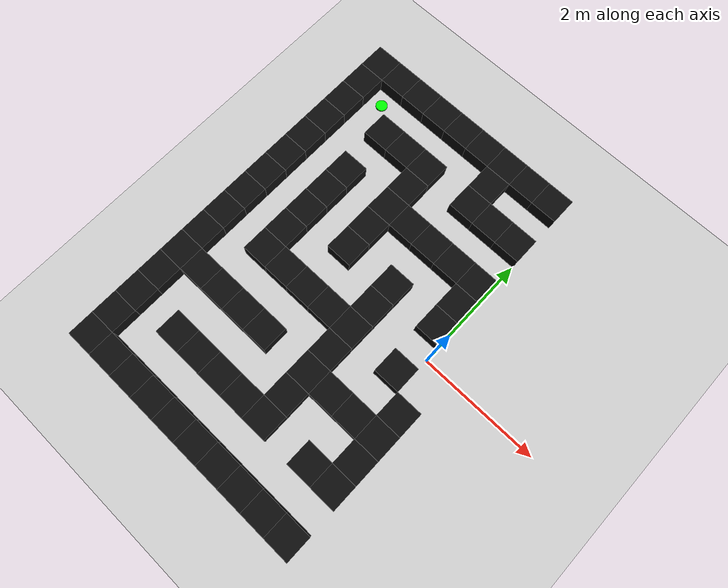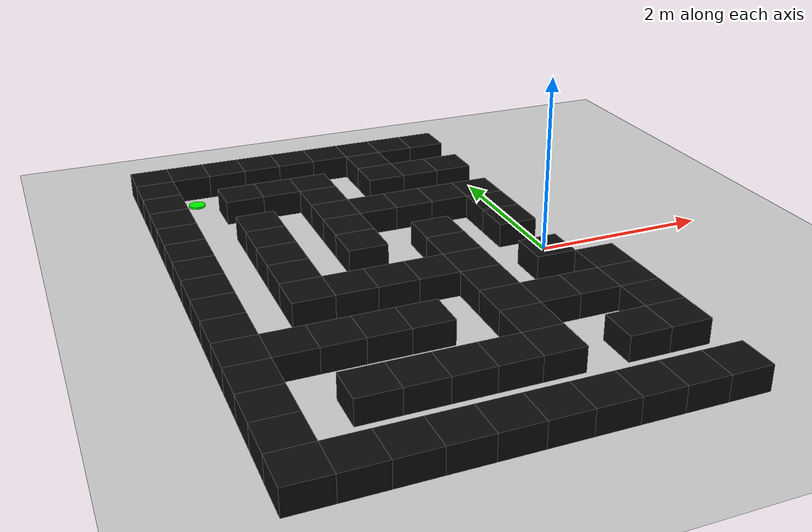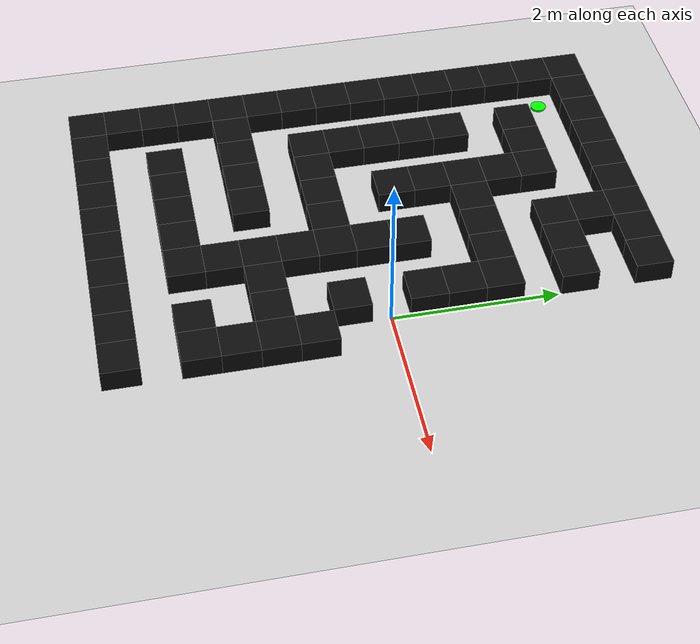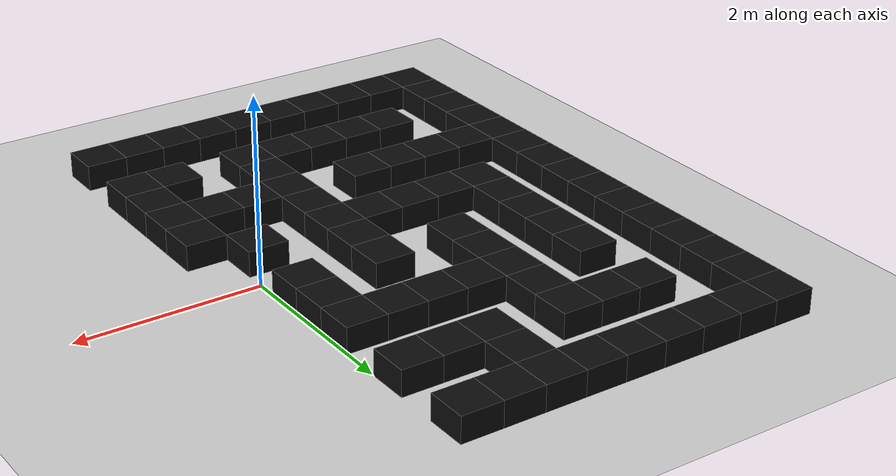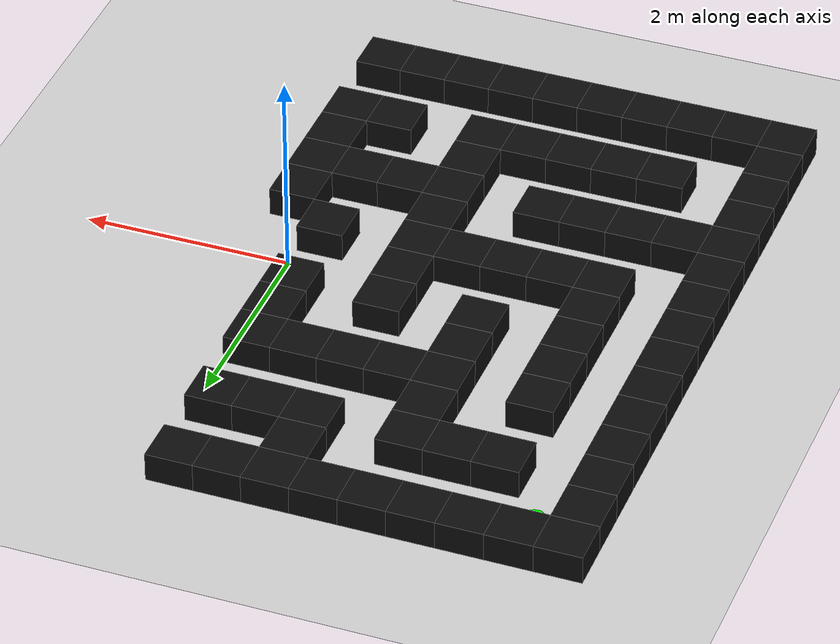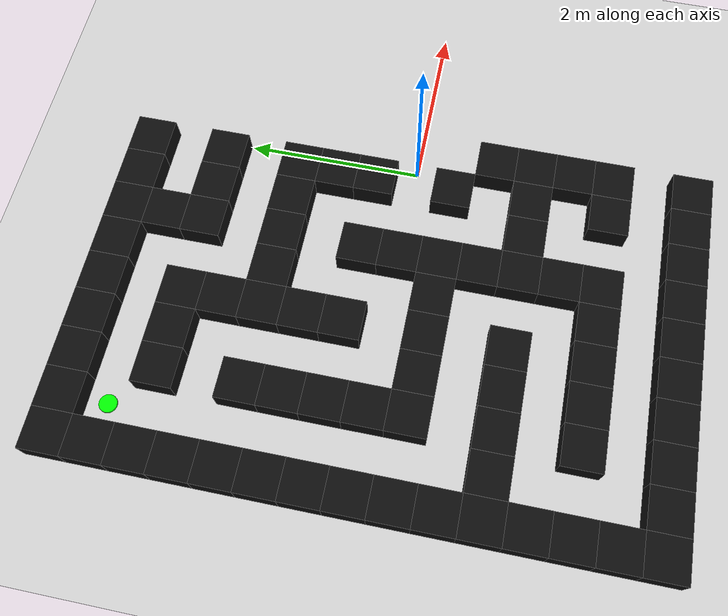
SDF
<sdf version="1.9">
 <world name="tangled_island_maze">
  <model name="ground_plane">
   <static>true</static>
   <link name="link">
    <collision name="collision">
     <geometry><plane><normal>0 0 1</normal><size>30 30</size></plane></geometry>
    </collision>
    <visual name="visual">
     <geometry><plane><normal>0 0 1</normal><size>30 30</size></plane></geometry>
     <material><ambient>0.82 0.82 0.82 1</ambient><diffuse>0.82 0.82 0.82 1</diffuse></material>
    </visual>
   </link>
  </model>
  <model name="wall_0">
   <static>true</static>
   <pose>-3.825 -3.150 0.140 0 0 0</pose>
   <link name="link">
    <collision name="collision"><geometry><box><size>0.450 0.450 0.280</size></box></geometry></collision>
    <visual name="visual">
     <geometry><box><size>0.450 0.450 0.280</size></box></geometry>
     <material><ambient>0.05 0.05 0.05 1</ambient><diffuse>0.05 0.05 0.05 1</diffuse></material>
    </visual>
   </link>
  </model>
  <model name="wall_1">
   <static>true</static>
   <pose>-3.375 -3.150 0.140 0 0 0</pose>
   <link name="link">
    <collision name="collision"><geometry><box><size>0.450 0.450 0.280</size></box></geometry></collision>
    <visual name="visual">
     <geometry><box><size>0.450 0.450 0.280</size></box></geometry>
     <material><ambient>0.05 0.05 0.05 1</ambient><diffuse>0.05 0.05 0.05 1</diffuse></material>
    </visual>
   </link>
  </model>
  <model name="wall_2">
   <static>true</static>
   <pose>-2.925 -3.150 0.140 0 0 0</pose>
   <link name="link">
    <collision name="collision"><geometry><box><size>0.450 0.450 0.280</size></box></geometry></collision>
    <visual name="visual">
     <geometry><box><size>0.450 0.450 0.280</size></box></geometry>
     <material><ambient>0.05 0.05 0.05 1</ambient><diffuse>0.05 0.05 0.05 1</diffuse></material>
    </visual>
   </link>
  </model>
  <model name="wall_3">
   <static>true</static>
   <pose>-2.475 -3.150 0.140 0 0 0</pose>
   <link name="link">
    <collision name="collision"><geometry><box><size>0.450 0.450 0.280</size></box></geometry></collision>
    <visual name="visual">
     <geometry><box><size>0.450 0.450 0.280</size></box></geometry>
     <material><ambient>0.05 0.05 0.05 1</ambient><diffuse>0.05 0.05 0.05 1</diffuse></material>
    </visual>
   </link>
  </model>
  <model name="wall_4">
   <static>true</static>
   <pose>-2.025 -3.150 0.140 0 0 0</pose>
   <link name="link">
    <collision name="collision"><geometry><box><size>0.450 0.450 0.280</size></box></geometry></collision>
    <visual name="visual">
     <geometry><box><size>0.450 0.450 0.280</size></box></geometry>
     <material><ambient>0.05 0.05 0.05 1</ambient><diffuse>0.05 0.05 0.05 1</diffuse></material>
    </visual>
   </link>
  </model>
  <model name="wall_5">
   <static>true</static>
   <pose>-1.575 -3.150 0.140 0 0 0</pose>
   <link name="link">
    <collision name="collision"><geometry><box><size>0.450 0.450 0.280</size></box></geometry></collision>
    <visual name="visual">
     <geometry><box><size>0.450 0.450 0.280</size></box></geometry>
     <material><ambient>0.05 0.05 0.05 1</ambient><diffuse>0.05 0.05 0.05 1</diffuse></material>
    </visual>
   </link>
  </model>
  <model name="wall_6">
   <static>true</static>
   <pose>-1.125 -3.150 0.140 0 0 0</pose>
   <link name="link">
    <collision name="collision"><geometry><box><size>0.450 0.450 0.280</size></box></geometry></collision>
    <visual name="visual">
     <geometry><box><size>0.450 0.450 0.280</size></box></geometry>
     <material><ambient>0.05 0.05 0.05 1</ambient><diffuse>0.05 0.05 0.05 1</diffuse></material>
    </visual>
   </link>
  </model>
  <model name="wall_7">
   <static>true</static>
   <pose>-0.675 -3.150 0.140 0 0 0</pose>
   <link name="link">
    <collision name="collision"><geometry><box><size>0.450 0.450 0.280</size></box></geometry></collision>
    <visual name="visual">
     <geometry><box><size>0.450 0.450 0.280</size></box></geometry>
     <material><ambient>0.05 0.05 0.05 1</ambient><diffuse>0.05 0.05 0.05 1</diffuse></material>
    </visual>
   </link>
  </model>
  <model name="wall_8">
   <static>true</static>
   <pose>-0.225 -3.150 0.140 0 0 0</pose>
   <link name="link">
    <collision name="collision"><geometry><box><size>0.450 0.450 0.280</size></box></geometry></collision>
    <visual name="visual">
     <geometry><box><size>0.450 0.450 0.280</size></box></geometry>
     <material><ambient>0.05 0.05 0.05 1</ambient><diffuse>0.05 0.05 0.05 1</diffuse></material>
    </visual>
   </link>
  </model>
  <model name="wall_9">
   <static>true</static>
   <pose>0.225 -3.150 0.140 0 0 0</pose>
   <link name="link">
    <collision name="collision"><geometry><box><size>0.450 0.450 0.280</size></box></geometry></collision>
    <visual name="visual">
     <geometry><box><size>0.450 0.450 0.280</size></box></geometry>
     <material><ambient>0.05 0.05 0.05 1</ambient><diffuse>0.05 0.05 0.05 1</diffuse></material>
    </visual>
   </link>
  </model>
  <model name="wall_18">
   <static>true</static>
   <pose>-3.825 -2.700 0.140 0 0 0</pose>
   <link name="link">
    <collision name="collision"><geometry><box><size>0.450 0.450 0.280</size></box></geometry></collision>
    <visual name="visual">
     <geometry><box><size>0.450 0.450 0.280</size></box></geometry>
     <material><ambient>0.05 0.05 0.05 1</ambient><diffuse>0.05 0.05 0.05 1</diffuse></material>
    </visual>
   </link>
  </model>
  <model name="wall_21">
   <static>true</static>
   <pose>-3.825 -2.250 0.140 0 0 0</pose>
   <link name="link">
    <collision name="collision"><geometry><box><size>0.450 0.450 0.280</size></box></geometry></collision>
    <visual name="visual">
     <geometry><box><size>0.450 0.450 0.280</size></box></geometry>
     <material><ambient>0.05 0.05 0.05 1</ambient><diffuse>0.05 0.05 0.05 1</diffuse></material>
    </visual>
   </link>
  </model>
  <model name="wall_22">
   <static>true</static>
   <pose>-2.925 -2.250 0.140 0 0 0</pose>
   <link name="link">
    <collision name="collision"><geometry><box><size>0.450 0.450 0.280</size></box></geometry></collision>
    <visual name="visual">
     <geometry><box><size>0.450 0.450 0.280</size></box></geometry>
     <material><ambient>0.05 0.05 0.05 1</ambient><diffuse>0.05 0.05 0.05 1</diffuse></material>
    </visual>
   </link>
  </model>
  <model name="wall_23">
   <static>true</static>
   <pose>-2.475 -2.250 0.140 0 0 0</pose>
   <link name="link">
    <collision name="collision"><geometry><box><size>0.450 0.450 0.280</size></box></geometry></collision>
    <visual name="visual">
     <geometry><box><size>0.450 0.450 0.280</size></box></geometry>
     <material><ambient>0.05 0.05 0.05 1</ambient><diffuse>0.05 0.05 0.05 1</diffuse></material>
    </visual>
   </link>
  </model>
  <model name="wall_24">
   <static>true</static>
   <pose>-2.025 -2.250 0.140 0 0 0</pose>
   <link name="link">
    <collision name="collision"><geometry><box><size>0.450 0.450 0.280</size></box></geometry></collision>
    <visual name="visual">
     <geometry><box><size>0.450 0.450 0.280</size></box></geometry>
     <material><ambient>0.05 0.05 0.05 1</ambient><diffuse>0.05 0.05 0.05 1</diffuse></material>
    </visual>
   </link>
  </model>
  <model name="wall_25">
   <static>true</static>
   <pose>-1.575 -2.250 0.140 0 0 0</pose>
   <link name="link">
    <collision name="collision"><geometry><box><size>0.450 0.450 0.280</size></box></geometry></collision>
    <visual name="visual">
     <geometry><box><size>0.450 0.450 0.280</size></box></geometry>
     <material><ambient>0.05 0.05 0.05 1</ambient><diffuse>0.05 0.05 0.05 1</diffuse></material>
    </visual>
   </link>
  </model>
  <model name="wall_26">
   <static>true</static>
   <pose>-1.125 -2.250 0.140 0 0 0</pose>
   <link name="link">
    <collision name="collision"><geometry><box><size>0.450 0.450 0.280</size></box></geometry></collision>
    <visual name="visual">
     <geometry><box><size>0.450 0.450 0.280</size></box></geometry>
     <material><ambient>0.05 0.05 0.05 1</ambient><diffuse>0.05 0.05 0.05 1</diffuse></material>
    </visual>
   </link>
  </model>
  <model name="wall_27">
   <static>true</static>
   <pose>-0.225 -2.250 0.140 0 0 0</pose>
   <link name="link">
    <collision name="collision"><geometry><box><size>0.450 0.450 0.280</size></box></geometry></collision>
    <visual name="visual">
     <geometry><box><size>0.450 0.450 0.280</size></box></geometry>
     <material><ambient>0.05 0.05 0.05 1</ambient><diffuse>0.05 0.05 0.05 1</diffuse></material>
    </visual>
   </link>
  </model>
  <model name="wall_28">
   <static>true</static>
   <pose>0.225 -2.250 0.140 0 0 0</pose>
   <link name="link">
    <collision name="collision"><geometry><box><size>0.450 0.450 0.280</size></box></geometry></collision>
    <visual name="visual">
     <geometry><box><size>0.450 0.450 0.280</size></box></geometry>
     <material><ambient>0.05 0.05 0.05 1</ambient><diffuse>0.05 0.05 0.05 1</diffuse></material>
    </visual>
   </link>
  </model>
  <model name="wall_37">
   <static>true</static>
   <pose>-3.825 -1.800 0.140 0 0 0</pose>
   <link name="link">
    <collision name="collision"><geometry><box><size>0.450 0.450 0.280</size></box></geometry></collision>
    <visual name="visual">
     <geometry><box><size>0.450 0.450 0.280</size></box></geometry>
     <material><ambient>0.05 0.05 0.05 1</ambient><diffuse>0.05 0.05 0.05 1</diffuse></material>
    </visual>
   </link>
  </model>
  <model name="wall_38">
   <static>true</static>
   <pose>-1.125 -1.800 0.140 0 0 0</pose>
   <link name="link">
    <collision name="collision"><geometry><box><size>0.450 0.450 0.280</size></box></geometry></collision>
    <visual name="visual">
     <geometry><box><size>0.450 0.450 0.280</size></box></geometry>
     <material><ambient>0.05 0.05 0.05 1</ambient><diffuse>0.05 0.05 0.05 1</diffuse></material>
    </visual>
   </link>
  </model>
  <model name="wall_39">
   <static>true</static>
   <pose>0.225 -1.800 0.140 0 0 0</pose>
   <link name="link">
    <collision name="collision"><geometry><box><size>0.450 0.450 0.280</size></box></geometry></collision>
    <visual name="visual">
     <geometry><box><size>0.450 0.450 0.280</size></box></geometry>
     <material><ambient>0.05 0.05 0.05 1</ambient><diffuse>0.05 0.05 0.05 1</diffuse></material>
    </visual>
   </link>
  </model>
  <model name="wall_43">
   <static>true</static>
   <pose>-3.825 -1.350 0.140 0 0 0</pose>
   <link name="link">
    <collision name="collision"><geometry><box><size>0.450 0.450 0.280</size></box></geometry></collision>
    <visual name="visual">
     <geometry><box><size>0.450 0.450 0.280</size></box></geometry>
     <material><ambient>0.05 0.05 0.05 1</ambient><diffuse>0.05 0.05 0.05 1</diffuse></material>
    </visual>
   </link>
  </model>
  <model name="wall_44">
   <static>true</static>
   <pose>-3.375 -1.350 0.140 0 0 0</pose>
   <link name="link">
    <collision name="collision"><geometry><box><size>0.450 0.450 0.280</size></box></geometry></collision>
    <visual name="visual">
     <geometry><box><size>0.450 0.450 0.280</size></box></geometry>
     <material><ambient>0.05 0.05 0.05 1</ambient><diffuse>0.05 0.05 0.05 1</diffuse></material>
    </visual>
   </link>
  </model>
  <model name="wall_45">
   <static>true</static>
   <pose>-2.925 -1.350 0.140 0 0 0</pose>
   <link name="link">
    <collision name="collision"><geometry><box><size>0.450 0.450 0.280</size></box></geometry></collision>
    <visual name="visual">
     <geometry><box><size>0.450 0.450 0.280</size></box></geometry>
     <material><ambient>0.05 0.05 0.05 1</ambient><diffuse>0.05 0.05 0.05 1</diffuse></material>
    </visual>
   </link>
  </model>
  <model name="wall_46">
   <static>true</static>
   <pose>-2.475 -1.350 0.140 0 0 0</pose>
   <link name="link">
    <collision name="collision"><geometry><box><size>0.450 0.450 0.280</size></box></geometry></collision>
    <visual name="visual">
     <geometry><box><size>0.450 0.450 0.280</size></box></geometry>
     <material><ambient>0.05 0.05 0.05 1</ambient><diffuse>0.05 0.05 0.05 1</diffuse></material>
    </visual>
   </link>
  </model>
  <model name="wall_47">
   <static>true</static>
   <pose>-2.025 -1.350 0.140 0 0 0</pose>
   <link name="link">
    <collision name="collision"><geometry><box><size>0.450 0.450 0.280</size></box></geometry></collision>
    <visual name="visual">
     <geometry><box><size>0.450 0.450 0.280</size></box></geometry>
     <material><ambient>0.05 0.05 0.05 1</ambient><diffuse>0.05 0.05 0.05 1</diffuse></material>
    </visual>
   </link>
  </model>
  <model name="wall_48">
   <static>true</static>
   <pose>-1.125 -1.350 0.140 0 0 0</pose>
   <link name="link">
    <collision name="collision"><geometry><box><size>0.450 0.450 0.280</size></box></geometry></collision>
    <visual name="visual">
     <geometry><box><size>0.450 0.450 0.280</size></box></geometry>
     <material><ambient>0.05 0.05 0.05 1</ambient><diffuse>0.05 0.05 0.05 1</diffuse></material>
    </visual>
   </link>
  </model>
  <model name="wall_49">
   <static>true</static>
   <pose>-0.675 -1.350 0.140 0 0 0</pose>
   <link name="link">
    <collision name="collision"><geometry><box><size>0.450 0.450 0.280</size></box></geometry></collision>
    <visual name="visual">
     <geometry><box><size>0.450 0.450 0.280</size></box></geometry>
     <material><ambient>0.05 0.05 0.05 1</ambient><diffuse>0.05 0.05 0.05 1</diffuse></material>
    </visual>
   </link>
  </model>
  <model name="wall_50">
   <static>true</static>
   <pose>-0.225 -1.350 0.140 0 0 0</pose>
   <link name="link">
    <collision name="collision"><geometry><box><size>0.450 0.450 0.280</size></box></geometry></collision>
    <visual name="visual">
     <geometry><box><size>0.450 0.450 0.280</size></box></geometry>
     <material><ambient>0.05 0.05 0.05 1</ambient><diffuse>0.05 0.05 0.05 1</diffuse></material>
    </visual>
   </link>
  </model>
  <model name="wall_51">
   <static>true</static>
   <pose>0.225 -1.350 0.140 0 0 0</pose>
   <link name="link">
    <collision name="collision"><geometry><box><size>0.450 0.450 0.280</size></box></geometry></collision>
    <visual name="visual">
     <geometry><box><size>0.450 0.450 0.280</size></box></geometry>
     <material><ambient>0.05 0.05 0.05 1</ambient><diffuse>0.05 0.05 0.05 1</diffuse></material>
    </visual>
   </link>
  </model>
  <model name="wall_57">
   <static>true</static>
   <pose>-3.825 -0.900 0.140 0 0 0</pose>
   <link name="link">
    <collision name="collision"><geometry><box><size>0.450 0.450 0.280</size></box></geometry></collision>
    <visual name="visual">
     <geometry><box><size>0.450 0.450 0.280</size></box></geometry>
     <material><ambient>0.05 0.05 0.05 1</ambient><diffuse>0.05 0.05 0.05 1</diffuse></material>
    </visual>
   </link>
  </model>
  <model name="wall_58">
   <static>true</static>
   <pose>-1.125 -0.900 0.140 0 0 0</pose>
   <link name="link">
    <collision name="collision"><geometry><box><size>0.450 0.450 0.280</size></box></geometry></collision>
    <visual name="visual">
     <geometry><box><size>0.450 0.450 0.280</size></box></geometry>
     <material><ambient>0.05 0.05 0.05 1</ambient><diffuse>0.05 0.05 0.05 1</diffuse></material>
    </visual>
   </link>
  </model>
  <model name="wall_59">
   <static>true</static>
   <pose>0.225 -0.900 0.140 0 0 0</pose>
   <link name="link">
    <collision name="collision"><geometry><box><size>0.450 0.450 0.280</size></box></geometry></collision>
    <visual name="visual">
     <geometry><box><size>0.450 0.450 0.280</size></box></geometry>
     <material><ambient>0.05 0.05 0.05 1</ambient><diffuse>0.05 0.05 0.05 1</diffuse></material>
    </visual>
   </link>
  </model>
  <model name="wall_65">
   <static>true</static>
   <pose>-3.825 -0.450 0.140 0 0 0</pose>
   <link name="link">
    <collision name="collision"><geometry><box><size>0.450 0.450 0.280</size></box></geometry></collision>
    <visual name="visual">
     <geometry><box><size>0.450 0.450 0.280</size></box></geometry>
     <material><ambient>0.05 0.05 0.05 1</ambient><diffuse>0.05 0.05 0.05 1</diffuse></material>
    </visual>
   </link>
  </model>
  <model name="wall_66">
   <static>true</static>
   <pose>-2.925 -0.450 0.140 0 0 0</pose>
   <link name="link">
    <collision name="collision"><geometry><box><size>0.450 0.450 0.280</size></box></geometry></collision>
    <visual name="visual">
     <geometry><box><size>0.450 0.450 0.280</size></box></geometry>
     <material><ambient>0.05 0.05 0.05 1</ambient><diffuse>0.05 0.05 0.05 1</diffuse></material>
    </visual>
   </link>
  </model>
  <model name="wall_67">
   <static>true</static>
   <pose>-2.475 -0.450 0.140 0 0 0</pose>
   <link name="link">
    <collision name="collision"><geometry><box><size>0.450 0.450 0.280</size></box></geometry></collision>
    <visual name="visual">
     <geometry><box><size>0.450 0.450 0.280</size></box></geometry>
     <material><ambient>0.05 0.05 0.05 1</ambient><diffuse>0.05 0.05 0.05 1</diffuse></material>
    </visual>
   </link>
  </model>
  <model name="wall_68">
   <static>true</static>
   <pose>-2.025 -0.450 0.140 0 0 0</pose>
   <link name="link">
    <collision name="collision"><geometry><box><size>0.450 0.450 0.280</size></box></geometry></collision>
    <visual name="visual">
     <geometry><box><size>0.450 0.450 0.280</size></box></geometry>
     <material><ambient>0.05 0.05 0.05 1</ambient><diffuse>0.05 0.05 0.05 1</diffuse></material>
    </visual>
   </link>
  </model>
  <model name="wall_69">
   <static>true</static>
   <pose>-1.575 -0.450 0.140 0 0 0</pose>
   <link name="link">
    <collision name="collision"><geometry><box><size>0.450 0.450 0.280</size></box></geometry></collision>
    <visual name="visual">
     <geometry><box><size>0.450 0.450 0.280</size></box></geometry>
     <material><ambient>0.05 0.05 0.05 1</ambient><diffuse>0.05 0.05 0.05 1</diffuse></material>
    </visual>
   </link>
  </model>
  <model name="wall_70">
   <static>true</static>
   <pose>-1.125 -0.450 0.140 0 0 0</pose>
   <link name="link">
    <collision name="collision"><geometry><box><size>0.450 0.450 0.280</size></box></geometry></collision>
    <visual name="visual">
     <geometry><box><size>0.450 0.450 0.280</size></box></geometry>
     <material><ambient>0.05 0.05 0.05 1</ambient><diffuse>0.05 0.05 0.05 1</diffuse></material>
    </visual>
   </link>
  </model>
  <model name="wall_71">
   <static>true</static>
   <pose>-0.225 -0.450 0.140 0 0 0</pose>
   <link name="link">
    <collision name="collision"><geometry><box><size>0.450 0.450 0.280</size></box></geometry></collision>
    <visual name="visual">
     <geometry><box><size>0.450 0.450 0.280</size></box></geometry>
     <material><ambient>0.05 0.05 0.05 1</ambient><diffuse>0.05 0.05 0.05 1</diffuse></material>
    </visual>
   </link>
  </model>
  <model name="wall_79">
   <static>true</static>
   <pose>-3.825 0.000 0.140 0 0 0</pose>
   <link name="link">
    <collision name="collision"><geometry><box><size>0.450 0.450 0.280</size></box></geometry></collision>
    <visual name="visual">
     <geometry><box><size>0.450 0.450 0.280</size></box></geometry>
     <material><ambient>0.05 0.05 0.05 1</ambient><diffuse>0.05 0.05 0.05 1</diffuse></material>
    </visual>
   </link>
  </model>
  <model name="wall_80">
   <static>true</static>
   <pose>-2.925 0.000 0.140 0 0 0</pose>
   <link name="link">
    <collision name="collision"><geometry><box><size>0.450 0.450 0.280</size></box></geometry></collision>
    <visual name="visual">
     <geometry><box><size>0.450 0.450 0.280</size></box></geometry>
     <material><ambient>0.05 0.05 0.05 1</ambient><diffuse>0.05 0.05 0.05 1</diffuse></material>
    </visual>
   </link>
  </model>
  <model name="wall_81">
   <static>true</static>
   <pose>-1.125 0.000 0.140 0 0 0</pose>
   <link name="link">
    <collision name="collision"><geometry><box><size>0.450 0.450 0.280</size></box></geometry></collision>
    <visual name="visual">
     <geometry><box><size>0.450 0.450 0.280</size></box></geometry>
     <material><ambient>0.05 0.05 0.05 1</ambient><diffuse>0.05 0.05 0.05 1</diffuse></material>
    </visual>
   </link>
  </model>
  <model name="wall_86">
   <static>true</static>
   <pose>-3.825 0.450 0.140 0 0 0</pose>
   <link name="link">
    <collision name="collision"><geometry><box><size>0.450 0.450 0.280</size></box></geometry></collision>
    <visual name="visual">
     <geometry><box><size>0.450 0.450 0.280</size></box></geometry>
     <material><ambient>0.05 0.05 0.05 1</ambient><diffuse>0.05 0.05 0.05 1</diffuse></material>
    </visual>
   </link>
  </model>
  <model name="wall_87">
   <static>true</static>
   <pose>-2.925 0.450 0.140 0 0 0</pose>
   <link name="link">
    <collision name="collision"><geometry><box><size>0.450 0.450 0.280</size></box></geometry></collision>
    <visual name="visual">
     <geometry><box><size>0.450 0.450 0.280</size></box></geometry>
     <material><ambient>0.05 0.05 0.05 1</ambient><diffuse>0.05 0.05 0.05 1</diffuse></material>
    </visual>
   </link>
  </model>
  <model name="wall_88">
   <static>true</static>
   <pose>-2.025 0.450 0.140 0 0 0</pose>
   <link name="link">
    <collision name="collision"><geometry><box><size>0.450 0.450 0.280</size></box></geometry></collision>
    <visual name="visual">
     <geometry><box><size>0.450 0.450 0.280</size></box></geometry>
     <material><ambient>0.05 0.05 0.05 1</ambient><diffuse>0.05 0.05 0.05 1</diffuse></material>
    </visual>
   </link>
  </model>
  <model name="wall_89">
   <static>true</static>
   <pose>-1.125 0.450 0.140 0 0 0</pose>
   <link name="link">
    <collision name="collision"><geometry><box><size>0.450 0.450 0.280</size></box></geometry></collision>
    <visual name="visual">
     <geometry><box><size>0.450 0.450 0.280</size></box></geometry>
     <material><ambient>0.05 0.05 0.05 1</ambient><diffuse>0.05 0.05 0.05 1</diffuse></material>
    </visual>
   </link>
  </model>
  <model name="wall_90">
   <static>true</static>
   <pose>-0.225 0.450 0.140 0 0 0</pose>
   <link name="link">
    <collision name="collision"><geometry><box><size>0.450 0.450 0.280</size></box></geometry></collision>
    <visual name="visual">
     <geometry><box><size>0.450 0.450 0.280</size></box></geometry>
     <material><ambient>0.05 0.05 0.05 1</ambient><diffuse>0.05 0.05 0.05 1</diffuse></material>
    </visual>
   </link>
  </model>
  <model name="wall_99">
   <static>true</static>
   <pose>-3.825 0.900 0.140 0 0 0</pose>
   <link name="link">
    <collision name="collision"><geometry><box><size>0.450 0.450 0.280</size></box></geometry></collision>
    <visual name="visual">
     <geometry><box><size>0.450 0.450 0.280</size></box></geometry>
     <material><ambient>0.05 0.05 0.05 1</ambient><diffuse>0.05 0.05 0.05 1</diffuse></material>
    </visual>
   </link>
  </model>
  <model name="wall_100">
   <static>true</static>
   <pose>-2.925 0.900 0.140 0 0 0</pose>
   <link name="link">
    <collision name="collision"><geometry><box><size>0.450 0.450 0.280</size></box></geometry></collision>
    <visual name="visual">
     <geometry><box><size>0.450 0.450 0.280</size></box></geometry>
     <material><ambient>0.05 0.05 0.05 1</ambient><diffuse>0.05 0.05 0.05 1</diffuse></material>
    </visual>
   </link>
  </model>
  <model name="wall_101">
   <static>true</static>
   <pose>-2.025 0.900 0.140 0 0 0</pose>
   <link name="link">
    <collision name="collision"><geometry><box><size>0.450 0.450 0.280</size></box></geometry></collision>
    <visual name="visual">
     <geometry><box><size>0.450 0.450 0.280</size></box></geometry>
     <material><ambient>0.05 0.05 0.05 1</ambient><diffuse>0.05 0.05 0.05 1</diffuse></material>
    </visual>
   </link>
  </model>
  <model name="wall_102">
   <static>true</static>
   <pose>-0.225 0.900 0.140 0 0 0</pose>
   <link name="link">
    <collision name="collision"><geometry><box><size>0.450 0.450 0.280</size></box></geometry></collision>
    <visual name="visual">
     <geometry><box><size>0.450 0.450 0.280</size></box></geometry>
     <material><ambient>0.05 0.05 0.05 1</ambient><diffuse>0.05 0.05 0.05 1</diffuse></material>
    </visual>
   </link>
  </model>
  <model name="wall_106">
   <static>true</static>
   <pose>-3.825 1.350 0.140 0 0 0</pose>
   <link name="link">
    <collision name="collision"><geometry><box><size>0.450 0.450 0.280</size></box></geometry></collision>
    <visual name="visual">
     <geometry><box><size>0.450 0.450 0.280</size></box></geometry>
     <material><ambient>0.05 0.05 0.05 1</ambient><diffuse>0.05 0.05 0.05 1</diffuse></material>
    </visual>
   </link>
  </model>
  <model name="wall_107">
   <static>true</static>
   <pose>-2.925 1.350 0.140 0 0 0</pose>
   <link name="link">
    <collision name="collision"><geometry><box><size>0.450 0.450 0.280</size></box></geometry></collision>
    <visual name="visual">
     <geometry><box><size>0.450 0.450 0.280</size></box></geometry>
     <material><ambient>0.05 0.05 0.05 1</ambient><diffuse>0.05 0.05 0.05 1</diffuse></material>
    </visual>
   </link>
  </model>
  <model name="wall_108">
   <static>true</static>
   <pose>-2.025 1.350 0.140 0 0 0</pose>
   <link name="link">
    <collision name="collision"><geometry><box><size>0.450 0.450 0.280</size></box></geometry></collision>
    <visual name="visual">
     <geometry><box><size>0.450 0.450 0.280</size></box></geometry>
     <material><ambient>0.05 0.05 0.05 1</ambient><diffuse>0.05 0.05 0.05 1</diffuse></material>
    </visual>
   </link>
  </model>
  <model name="wall_109">
   <static>true</static>
   <pose>-1.575 1.350 0.140 0 0 0</pose>
   <link name="link">
    <collision name="collision"><geometry><box><size>0.450 0.450 0.280</size></box></geometry></collision>
    <visual name="visual">
     <geometry><box><size>0.450 0.450 0.280</size></box></geometry>
     <material><ambient>0.05 0.05 0.05 1</ambient><diffuse>0.05 0.05 0.05 1</diffuse></material>
    </visual>
   </link>
  </model>
  <model name="wall_110">
   <static>true</static>
   <pose>-1.125 1.350 0.140 0 0 0</pose>
   <link name="link">
    <collision name="collision"><geometry><box><size>0.450 0.450 0.280</size></box></geometry></collision>
    <visual name="visual">
     <geometry><box><size>0.450 0.450 0.280</size></box></geometry>
     <material><ambient>0.05 0.05 0.05 1</ambient><diffuse>0.05 0.05 0.05 1</diffuse></material>
    </visual>
   </link>
  </model>
  <model name="wall_111">
   <static>true</static>
   <pose>-0.675 1.350 0.140 0 0 0</pose>
   <link name="link">
    <collision name="collision"><geometry><box><size>0.450 0.450 0.280</size></box></geometry></collision>
    <visual name="visual">
     <geometry><box><size>0.450 0.450 0.280</size></box></geometry>
     <material><ambient>0.05 0.05 0.05 1</ambient><diffuse>0.05 0.05 0.05 1</diffuse></material>
    </visual>
   </link>
  </model>
  <model name="wall_112">
   <static>true</static>
   <pose>-0.225 1.350 0.140 0 0 0</pose>
   <link name="link">
    <collision name="collision"><geometry><box><size>0.450 0.450 0.280</size></box></geometry></collision>
    <visual name="visual">
     <geometry><box><size>0.450 0.450 0.280</size></box></geometry>
     <material><ambient>0.05 0.05 0.05 1</ambient><diffuse>0.05 0.05 0.05 1</diffuse></material>
    </visual>
   </link>
  </model>
  <model name="wall_119">
   <static>true</static>
   <pose>-3.825 1.800 0.140 0 0 0</pose>
   <link name="link">
    <collision name="collision"><geometry><box><size>0.450 0.450 0.280</size></box></geometry></collision>
    <visual name="visual">
     <geometry><box><size>0.450 0.450 0.280</size></box></geometry>
     <material><ambient>0.05 0.05 0.05 1</ambient><diffuse>0.05 0.05 0.05 1</diffuse></material>
    </visual>
   </link>
  </model>
  <model name="wall_120">
   <static>true</static>
   <pose>-2.025 1.800 0.140 0 0 0</pose>
   <link name="link">
    <collision name="collision"><geometry><box><size>0.450 0.450 0.280</size></box></geometry></collision>
    <visual name="visual">
     <geometry><box><size>0.450 0.450 0.280</size></box></geometry>
     <material><ambient>0.05 0.05 0.05 1</ambient><diffuse>0.05 0.05 0.05 1</diffuse></material>
    </visual>
   </link>
  </model>
  <model name="wall_125">
   <static>true</static>
   <pose>-3.825 2.250 0.140 0 0 0</pose>
   <link name="link">
    <collision name="collision"><geometry><box><size>0.450 0.450 0.280</size></box></geometry></collision>
    <visual name="visual">
     <geometry><box><size>0.450 0.450 0.280</size></box></geometry>
     <material><ambient>0.05 0.05 0.05 1</ambient><diffuse>0.05 0.05 0.05 1</diffuse></material>
    </visual>
   </link>
  </model>
  <model name="wall_126">
   <static>true</static>
   <pose>-2.925 2.250 0.140 0 0 0</pose>
   <link name="link">
    <collision name="collision"><geometry><box><size>0.450 0.450 0.280</size></box></geometry></collision>
    <visual name="visual">
     <geometry><box><size>0.450 0.450 0.280</size></box></geometry>
     <material><ambient>0.05 0.05 0.05 1</ambient><diffuse>0.05 0.05 0.05 1</diffuse></material>
    </visual>
   </link>
  </model>
  <model name="wall_127">
   <static>true</static>
   <pose>-2.475 2.250 0.140 0 0 0</pose>
   <link name="link">
    <collision name="collision"><geometry><box><size>0.450 0.450 0.280</size></box></geometry></collision>
    <visual name="visual">
     <geometry><box><size>0.450 0.450 0.280</size></box></geometry>
     <material><ambient>0.05 0.05 0.05 1</ambient><diffuse>0.05 0.05 0.05 1</diffuse></material>
    </visual>
   </link>
  </model>
  <model name="wall_128">
   <static>true</static>
   <pose>-2.025 2.250 0.140 0 0 0</pose>
   <link name="link">
    <collision name="collision"><geometry><box><size>0.450 0.450 0.280</size></box></geometry></collision>
    <visual name="visual">
     <geometry><box><size>0.450 0.450 0.280</size></box></geometry>
     <material><ambient>0.05 0.05 0.05 1</ambient><diffuse>0.05 0.05 0.05 1</diffuse></material>
    </visual>
   </link>
  </model>
  <model name="wall_129">
   <static>true</static>
   <pose>-1.125 2.250 0.140 0 0 0</pose>
   <link name="link">
    <collision name="collision"><geometry><box><size>0.450 0.450 0.280</size></box></geometry></collision>
    <visual name="visual">
     <geometry><box><size>0.450 0.450 0.280</size></box></geometry>
     <material><ambient>0.05 0.05 0.05 1</ambient><diffuse>0.05 0.05 0.05 1</diffuse></material>
    </visual>
   </link>
  </model>
  <model name="wall_130">
   <static>true</static>
   <pose>-0.675 2.250 0.140 0 0 0</pose>
   <link name="link">
    <collision name="collision"><geometry><box><size>0.450 0.450 0.280</size></box></geometry></collision>
    <visual name="visual">
     <geometry><box><size>0.450 0.450 0.280</size></box></geometry>
     <material><ambient>0.05 0.05 0.05 1</ambient><diffuse>0.05 0.05 0.05 1</diffuse></material>
    </visual>
   </link>
  </model>
  <model name="wall_131">
   <static>true</static>
   <pose>-0.225 2.250 0.140 0 0 0</pose>
   <link name="link">
    <collision name="collision"><geometry><box><size>0.450 0.450 0.280</size></box></geometry></collision>
    <visual name="visual">
     <geometry><box><size>0.450 0.450 0.280</size></box></geometry>
     <material><ambient>0.05 0.05 0.05 1</ambient><diffuse>0.05 0.05 0.05 1</diffuse></material>
    </visual>
   </link>
  </model>
  <model name="wall_138">
   <static>true</static>
   <pose>-3.825 2.700 0.140 0 0 0</pose>
   <link name="link">
    <collision name="collision"><geometry><box><size>0.450 0.450 0.280</size></box></geometry></collision>
    <visual name="visual">
     <geometry><box><size>0.450 0.450 0.280</size></box></geometry>
     <material><ambient>0.05 0.05 0.05 1</ambient><diffuse>0.05 0.05 0.05 1</diffuse></material>
    </visual>
   </link>
  </model>
  <model name="wall_139">
   <static>true</static>
   <pose>-1.125 2.700 0.140 0 0 0</pose>
   <link name="link">
    <collision name="collision"><geometry><box><size>0.450 0.450 0.280</size></box></geometry></collision>
    <visual name="visual">
     <geometry><box><size>0.450 0.450 0.280</size></box></geometry>
     <material><ambient>0.05 0.05 0.05 1</ambient><diffuse>0.05 0.05 0.05 1</diffuse></material>
    </visual>
   </link>
  </model>
  <model name="wall_143">
   <static>true</static>
   <pose>-3.825 3.150 0.140 0 0 0</pose>
   <link name="link">
    <collision name="collision"><geometry><box><size>0.450 0.450 0.280</size></box></geometry></collision>
    <visual name="visual">
     <geometry><box><size>0.450 0.450 0.280</size></box></geometry>
     <material><ambient>0.05 0.05 0.05 1</ambient><diffuse>0.05 0.05 0.05 1</diffuse></material>
    </visual>
   </link>
  </model>
  <model name="wall_144">
   <static>true</static>
   <pose>-3.375 3.150 0.140 0 0 0</pose>
   <link name="link">
    <collision name="collision"><geometry><box><size>0.450 0.450 0.280</size></box></geometry></collision>
    <visual name="visual">
     <geometry><box><size>0.450 0.450 0.280</size></box></geometry>
     <material><ambient>0.05 0.05 0.05 1</ambient><diffuse>0.05 0.05 0.05 1</diffuse></material>
    </visual>
   </link>
  </model>
  <model name="wall_145">
   <static>true</static>
   <pose>-2.925 3.150 0.140 0 0 0</pose>
   <link name="link">
    <collision name="collision"><geometry><box><size>0.450 0.450 0.280</size></box></geometry></collision>
    <visual name="visual">
     <geometry><box><size>0.450 0.450 0.280</size></box></geometry>
     <material><ambient>0.05 0.05 0.05 1</ambient><diffuse>0.05 0.05 0.05 1</diffuse></material>
    </visual>
   </link>
  </model>
  <model name="wall_146">
   <static>true</static>
   <pose>-2.475 3.150 0.140 0 0 0</pose>
   <link name="link">
    <collision name="collision"><geometry><box><size>0.450 0.450 0.280</size></box></geometry></collision>
    <visual name="visual">
     <geometry><box><size>0.450 0.450 0.280</size></box></geometry>
     <material><ambient>0.05 0.05 0.05 1</ambient><diffuse>0.05 0.05 0.05 1</diffuse></material>
    </visual>
   </link>
  </model>
  <model name="wall_147">
   <static>true</static>
   <pose>-2.025 3.150 0.140 0 0 0</pose>
   <link name="link">
    <collision name="collision"><geometry><box><size>0.450 0.450 0.280</size></box></geometry></collision>
    <visual name="visual">
     <geometry><box><size>0.450 0.450 0.280</size></box></geometry>
     <material><ambient>0.05 0.05 0.05 1</ambient><diffuse>0.05 0.05 0.05 1</diffuse></material>
    </visual>
   </link>
  </model>
  <model name="wall_148">
   <static>true</static>
   <pose>-1.575 3.150 0.140 0 0 0</pose>
   <link name="link">
    <collision name="collision"><geometry><box><size>0.450 0.450 0.280</size></box></geometry></collision>
    <visual name="visual">
     <geometry><box><size>0.450 0.450 0.280</size></box></geometry>
     <material><ambient>0.05 0.05 0.05 1</ambient><diffuse>0.05 0.05 0.05 1</diffuse></material>
    </visual>
   </link>
  </model>
  <model name="wall_149">
   <static>true</static>
   <pose>-1.125 3.150 0.140 0 0 0</pose>
   <link name="link">
    <collision name="collision"><geometry><box><size>0.450 0.450 0.280</size></box></geometry></collision>
    <visual name="visual">
     <geometry><box><size>0.450 0.450 0.280</size></box></geometry>
     <material><ambient>0.05 0.05 0.05 1</ambient><diffuse>0.05 0.05 0.05 1</diffuse></material>
    </visual>
   </link>
  </model>
  <model name="wall_150">
   <static>true</static>
   <pose>-0.675 3.150 0.140 0 0 0</pose>
   <link name="link">
    <collision name="collision"><geometry><box><size>0.450 0.450 0.280</size></box></geometry></collision>
    <visual name="visual">
     <geometry><box><size>0.450 0.450 0.280</size></box></geometry>
     <material><ambient>0.05 0.05 0.05 1</ambient><diffuse>0.05 0.05 0.05 1</diffuse></material>
    </visual>
   </link>
  </model>
  <model name="wall_151">
   <static>true</static>
   <pose>-0.225 3.150 0.140 0 0 0</pose>
   <link name="link">
    <collision name="collision"><geometry><box><size>0.450 0.450 0.280</size></box></geometry></collision>
    <visual name="visual">
     <geometry><box><size>0.450 0.450 0.280</size></box></geometry>
     <material><ambient>0.05 0.05 0.05 1</ambient><diffuse>0.05 0.05 0.05 1</diffuse></material>
    </visual>
   </link>
  </model>
  <model name="start_marker">
   <static>true</static>
   <pose>-3.375 2.700 0.012 0 0 0</pose>
   <link name="link">
    <visual name="visual">
     <geometry><cylinder><radius>0.099</radius><length>0.024</length></cylinder></geometry>
     <material><ambient>0 1 0 1</ambient><diffuse>0 1 0 1</diffuse></material>
    </visual>
   </link>
  </model>
 </world>
</sdf>
